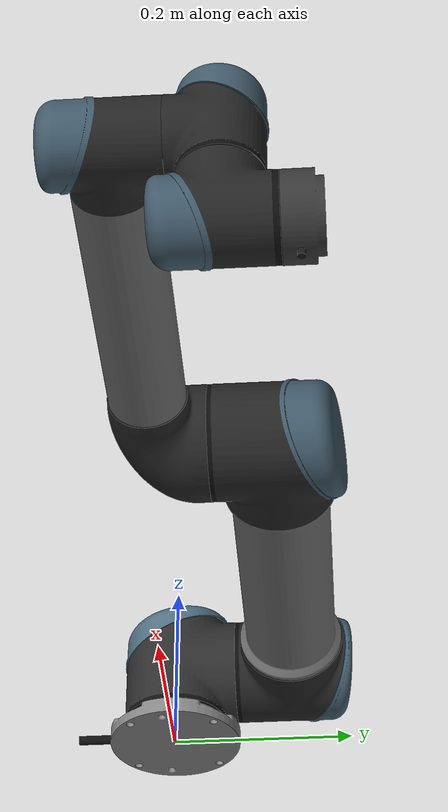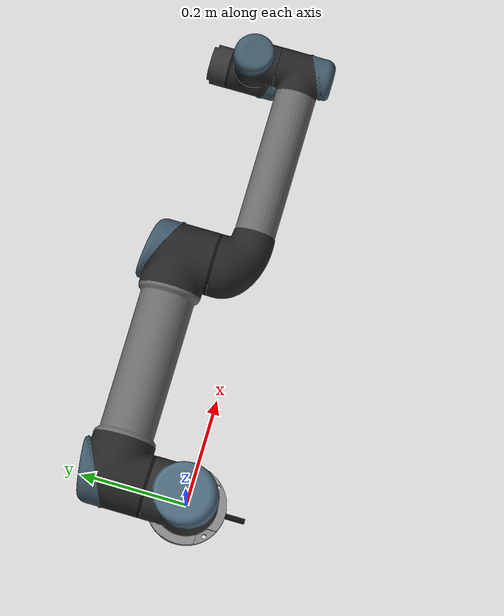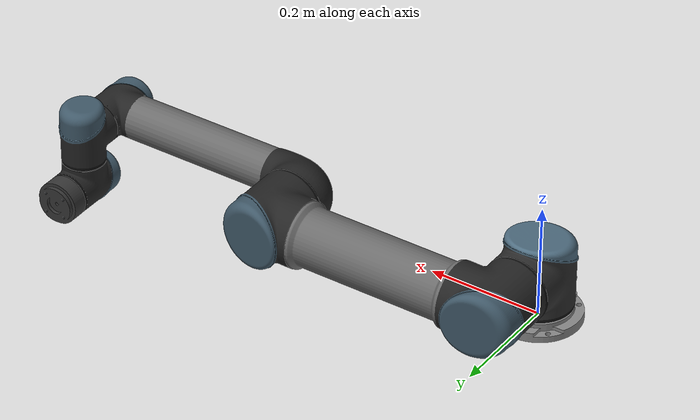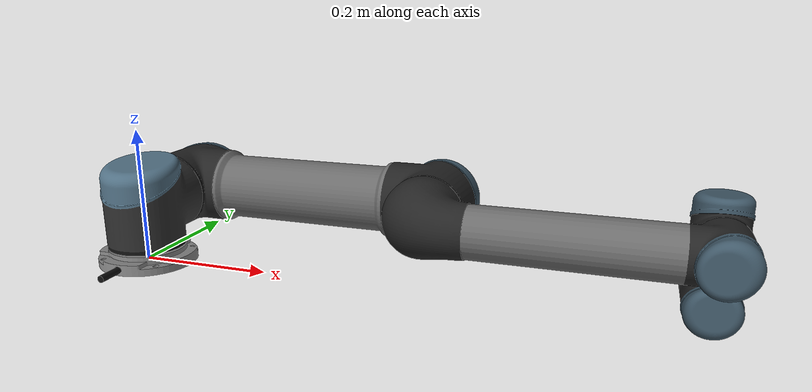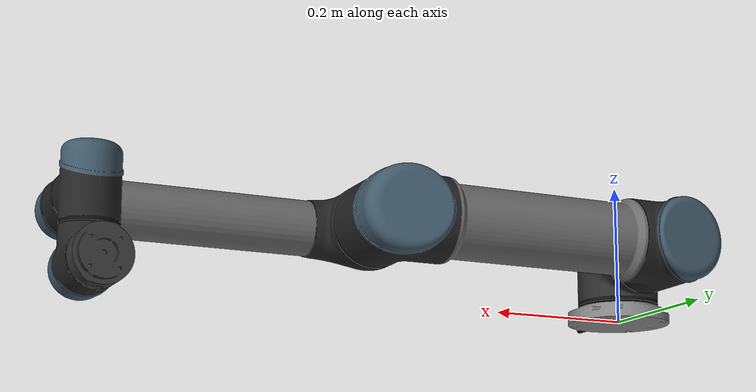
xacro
<?xml version="1.0"?>
<robot xmlns:xacro="http://www.ros.org/wiki/xacro" name="ur">
    <xacro:arg name="initial_positions_file" default="initial_positions.yaml" />

    <!-- Import ur urdf file -->
    <xacro:include filename="$(find ur_description)/urdf/ur5.urdf" />

    <!-- Import control_xacro -->
    <xacro:include filename="ur.ros2_control.xacro" />

    <xacro:ur_ros2_control name="FakeSystem" initial_positions_file="$(arg initial_positions_file)"/>

</robot>

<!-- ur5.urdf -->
<!-- |    This document was autogenerated by xacro from /opt/ros/humble/share/ur_description/urdf/ur.urdf.xacro | -->
<!-- |    EDITING THIS FILE BY HAND IS NOT RECOMMENDED                                 | -->
<robot name="ur">
  <!-- create link fixed to the "world" -->
  <link name="world"/>
  <ros2_control name="ur" type="system">
    <hardware>
      <plugin>ur_robot_driver/URPositionHardwareInterface</plugin>
      <param name="robot_ip">0.0.0.0</param>
      <param name="script_filename"></param>
      <param name="output_recipe_filename"></param>
      <param name="input_recipe_filename"></param>
      <param name="headless_mode">False</param>
      <param name="reverse_port">50001</param>
      <param name="script_sender_port">50002</param>
      <param name="reverse_ip">0.0.0.0</param>
      <param name="script_command_port">50004</param>
      <param name="trajectory_port">50003</param>
      <param name="tf_prefix"></param>
      <param name="non_blocking_read">False</param>
      <param name="servoj_gain">2000</param>
      <param name="servoj_lookahead_time">0.03</param>
      <param name="use_tool_communication">False</param>
      <param name="kinematics/hash">calib_209549117540498681</param>
      <param name="tool_voltage">0</param>
      <param name="tool_parity">0</param>
      <param name="tool_baud_rate">115200</param>
      <param name="tool_stop_bits">1</param>
      <param name="tool_rx_idle_chars">1.5</param>
      <param name="tool_tx_idle_chars">3.5</param>
      <param name="tool_device_name">/tmp/ttyUR</param>
      <param name="tool_tcp_port">54321</param>
      <param name="keep_alive_count">2</param>
    </hardware>
    <joint name="shoulder_pan_joint">
      <command_interface name="position">
        <param name="min">{-2*pi}</param>
        <param name="max">{2*pi}</param>
      </command_interface>
      <command_interface name="velocity">
        <param name="min">-3.15</param>
        <param name="max">3.15</param>
      </command_interface>
      <state_interface name="position">
        <!-- initial position for the FakeSystem and simulation -->
        <param name="initial_value">0.0</param>
      </state_interface>
      <state_interface name="velocity"/>
      <state_interface name="effort"/>
    </joint>
    <joint name="shoulder_lift_joint">
      <command_interface name="position">
        <param name="min">{-2*pi}</param>
        <param name="max">{2*pi}</param>
      </command_interface>
      <command_interface name="velocity">
        <param name="min">-3.15</param>
        <param name="max">3.15</param>
      </command_interface>
      <state_interface name="position">
        <!-- initial position for the FakeSystem and simulation -->
        <param name="initial_value">-1.57</param>
      </state_interface>
      <state_interface name="velocity"/>
      <state_interface name="effort"/>
    </joint>
    <joint name="elbow_joint">
      <command_interface name="position">
        <param name="min">{-pi}</param>
        <param name="max">{pi}</param>
      </command_interface>
      <command_interface name="velocity">
        <param name="min">-3.15</param>
        <param name="max">3.15</param>
      </command_interface>
      <state_interface name="position">
        <!-- initial position for the FakeSystem and simulation -->
        <param name="initial_value">0.0</param>
      </state_interface>
      <state_interface name="velocity"/>
      <state_interface name="effort"/>
    </joint>
    <joint name="wrist_1_joint">
      <command_interface name="position">
        <param name="min">{-2*pi}</param>
        <param name="max">{2*pi}</param>
      </command_interface>
      <command_interface name="velocity">
        <param name="min">-3.2</param>
        <param name="max">3.2</param>
      </command_interface>
      <state_interface name="position">
        <!-- initial position for the FakeSystem and simulation -->
        <param name="initial_value">-1.57</param>
      </state_interface>
      <state_interface name="velocity"/>
      <state_interface name="effort"/>
    </joint>
    <joint name="wrist_2_joint">
      <command_interface name="position">
        <param name="min">{-2*pi}</param>
        <param name="max">{2*pi}</param>
      </command_interface>
      <command_interface name="velocity">
        <param name="min">-3.2</param>
        <param name="max">3.2</param>
      </command_interface>
      <state_interface name="position">
        <!-- initial position for the FakeSystem and simulation -->
        <param name="initial_value">0.0</param>
      </state_interface>
      <state_interface name="velocity"/>
      <state_interface name="effort"/>
    </joint>
    <joint name="wrist_3_joint">
      <command_interface name="position">
        <param name="min">{-2*pi}</param>
        <param name="max">{2*pi}</param>
      </command_interface>
      <command_interface name="velocity">
        <param name="min">-3.2</param>
        <param name="max">3.2</param>
      </command_interface>
      <state_interface name="position">
        <!-- initial position for the FakeSystem and simulation -->
        <param name="initial_value">0.0</param>
      </state_interface>
      <state_interface name="velocity"/>
      <state_interface name="effort"/>
    </joint>
    <sensor name="tcp_fts_sensor">
      <state_interface name="force.x"/>
      <state_interface name="force.y"/>
      <state_interface name="force.z"/>
      <state_interface name="torque.x"/>
      <state_interface name="torque.y"/>
      <state_interface name="torque.z"/>
    </sensor>
    <!-- NOTE The following are joints used only for testing with fake hardware and will change in the future -->
    <gpio name="speed_scaling">
      <state_interface name="speed_scaling_factor"/>
      <param name="initial_speed_scaling_factor">1</param>
      <command_interface name="target_speed_fraction_cmd"/>
      <command_interface name="target_speed_fraction_async_success"/>
    </gpio>
    <gpio name="gpio">
      <command_interface name="standard_digital_output_cmd_0"/>
      <command_interface name="standard_digital_output_cmd_1"/>
      <command_interface name="standard_digital_output_cmd_2"/>
      <command_interface name="standard_digital_output_cmd_3"/>
      <command_interface name="standard_digital_output_cmd_4"/>
      <command_interface name="standard_digital_output_cmd_5"/>
      <command_interface name="standard_digital_output_cmd_6"/>
      <command_interface name="standard_digital_output_cmd_7"/>
      <command_interface name="standard_digital_output_cmd_8"/>
      <command_interface name="standard_digital_output_cmd_9"/>
      <command_interface name="standard_digital_output_cmd_10"/>
      <command_interface name="standard_digital_output_cmd_11"/>
      <command_interface name="standard_digital_output_cmd_12"/>
      <command_interface name="standard_digital_output_cmd_13"/>
      <command_interface name="standard_digital_output_cmd_14"/>
      <command_interface name="standard_digital_output_cmd_15"/>
      <command_interface name="standard_digital_output_cmd_16"/>
      <command_interface name="standard_digital_output_cmd_17"/>
      <command_interface name="standard_analog_output_cmd_0"/>
      <command_interface name="standard_analog_output_cmd_1"/>
      <command_interface name="tool_voltage_cmd"/>
      <command_interface name="io_async_success"/>
      <state_interface name="digital_output_0"/>
      <state_interface name="digital_output_1"/>
      <state_interface name="digital_output_2"/>
      <state_interface name="digital_output_3"/>
      <state_interface name="digital_output_4"/>
      <state_interface name="digital_output_5"/>
      <state_interface name="digital_output_6"/>
      <state_interface name="digital_output_7"/>
      <state_interface name="digital_output_8"/>
      <state_interface name="digital_output_9"/>
      <state_interface name="digital_output_10"/>
      <state_interface name="digital_output_11"/>
      <state_interface name="digital_output_12"/>
      <state_interface name="digital_output_13"/>
      <state_interface name="digital_output_14"/>
      <state_interface name="digital_output_15"/>
      <state_interface name="digital_output_16"/>
      <state_interface name="digital_output_17"/>
      <state_interface name="digital_input_0"/>
      <state_interface name="digital_input_1"/>
      <state_interface name="digital_input_2"/>
      <state_interface name="digital_input_3"/>
      <state_interface name="digital_input_4"/>
      <state_interface name="digital_input_5"/>
      <state_interface name="digital_input_6"/>
      <state_interface name="digital_input_7"/>
      <state_interface name="digital_input_8"/>
      <state_interface name="digital_input_9"/>
      <state_interface name="digital_input_10"/>
      <state_interface name="digital_input_11"/>
      <state_interface name="digital_input_12"/>
      <state_interface name="digital_input_13"/>
      <state_interface name="digital_input_14"/>
      <state_interface name="digital_input_15"/>
      <state_interface name="digital_input_16"/>
      <state_interface name="digital_input_17"/>
      <state_interface name="standard_analog_output_0"/>
      <state_interface name="standard_analog_output_1"/>
      <state_interface name="standard_analog_input_0"/>
      <state_interface name="standard_analog_input_1"/>
      <state_interface name="analog_io_type_0"/>
      <state_interface name="analog_io_type_1"/>
      <state_interface name="analog_io_type_2"/>
      <state_interface name="analog_io_type_3"/>
      <state_interface name="tool_mode"/>
      <state_interface name="tool_output_voltage"/>
      <state_interface name="tool_output_current"/>
      <state_interface name="tool_temperature"/>
      <state_interface name="tool_analog_input_0"/>
      <state_interface name="tool_analog_input_1"/>
      <state_interface name="tool_analog_input_type_0"/>
      <state_interface name="tool_analog_input_type_1"/>
      <state_interface name="robot_mode"/>
      <state_interface name="robot_status_bit_0"/>
      <state_interface name="robot_status_bit_1"/>
      <state_interface name="robot_status_bit_2"/>
      <state_interface name="robot_status_bit_3"/>
      <state_interface name="safety_mode"/>
      <state_interface name="safety_status_bit_0"/>
      <state_interface name="safety_status_bit_1"/>
      <state_interface name="safety_status_bit_2"/>
      <state_interface name="safety_status_bit_3"/>
      <state_interface name="safety_status_bit_4"/>
      <state_interface name="safety_status_bit_5"/>
      <state_interface name="safety_status_bit_6"/>
      <state_interface name="safety_status_bit_7"/>
      <state_interface name="safety_status_bit_8"/>
      <state_interface name="safety_status_bit_9"/>
      <state_interface name="safety_status_bit_10"/>
      <state_interface name="program_running"/>
    </gpio>
    <gpio name="payload">
      <command_interface name="mass"/>
      <command_interface name="cog.x"/>
      <command_interface name="cog.y"/>
      <command_interface name="cog.z"/>
      <command_interface name="payload_async_success"/>
    </gpio>
    <gpio name="resend_robot_program">
      <command_interface name="resend_robot_program_cmd"/>
      <command_interface name="resend_robot_program_async_success"/>
    </gpio>
    <gpio name="hand_back_control">
      <command_interface name="hand_back_control_cmd"/>
      <command_interface name="hand_back_control_async_success"/>
    </gpio>
    <gpio name="zero_ftsensor">
      <command_interface name="zero_ftsensor_cmd"/>
      <command_interface name="zero_ftsensor_async_success"/>
    </gpio>
    <gpio name="system_interface">
      <state_interface name="initialized"/>
    </gpio>
  </ros2_control>
  <!-- Add URDF transmission elements (for ros_control) -->
  <!-- Placeholder for ros2_control transmission which don't yet exist -->
  <!-- links -  main serial chain -->
  <link name="base_link"/>
  <link name="base_link_inertia">
    <visual>
      <origin rpy="0 0 3.141592653589793" xyz="0 0 0"/>
      <geometry>
        <mesh filename="package://ur_description/meshes/ur5/visual/base.dae"/>
      </geometry>
    </visual>
    <collision>
      <origin rpy="0 0 3.141592653589793" xyz="0 0 0"/>
      <geometry>
        <mesh filename="package://ur_description/meshes/ur5/collision/base.stl"/>
      </geometry>
    </collision>
    <inertial>
      <mass value="4.0"/>
      <origin rpy="0 0 0" xyz="0 0 0"/>
      <inertia ixx="0.00443333156" ixy="0.0" ixz="0.0" iyy="0.00443333156" iyz="0.0" izz="0.0072"/>
    </inertial>
  </link>
  <link name="shoulder_link">
    <visual>
      <origin rpy="0 0 3.141592653589793" xyz="0 0 0"/>
      <geometry>
        <mesh filename="package://ur_description/meshes/ur5/visual/shoulder.dae"/>
      </geometry>
    </visual>
    <collision>
      <origin rpy="0 0 3.141592653589793" xyz="0 0 0"/>
      <geometry>
        <mesh filename="package://ur_description/meshes/ur5/collision/shoulder.stl"/>
      </geometry>
    </collision>
    <inertial>
      <mass value="3.7"/>
      <origin rpy="0 0 0" xyz="0 0 0"/>
      <inertia ixx="0.014972352344389999" ixy="0.0" ixz="0.0" iyy="0.014972352344389999" iyz="0.0" izz="0.01040625"/>
    </inertial>
  </link>
  <link name="upper_arm_link">
    <visual>
      <origin rpy="1.5707963267948966 0 -1.5707963267948966" xyz="0 0 0.13585"/>
      <geometry>
        <mesh filename="package://ur_description/meshes/ur5/visual/upperarm.dae"/>
      </geometry>
    </visual>
    <collision>
      <origin rpy="1.5707963267948966 0 -1.5707963267948966" xyz="0 0 0.13585"/>
      <geometry>
        <mesh filename="package://ur_description/meshes/ur5/collision/upperarm.stl"/>
      </geometry>
    </collision>
    <inertial>
      <mass value="8.393"/>
      <origin rpy="0 1.5707963267948966 0" xyz="-0.2125 0.0 0.136"/>
      <inertia ixx="0.1338857818623325" ixy="0.0" ixz="0.0" iyy="0.1338857818623325" iyz="0.0" izz="0.0151074"/>
    </inertial>
  </link>
  <link name="forearm_link">
    <visual>
      <origin rpy="1.5707963267948966 0 -1.5707963267948966" xyz="0 0 0.0165"/>
      <geometry>
        <mesh filename="package://ur_description/meshes/ur5/visual/forearm.dae"/>
      </geometry>
    </visual>
    <collision>
      <origin rpy="1.5707963267948966 0 -1.5707963267948966" xyz="0 0 0.0165"/>
      <geometry>
        <mesh filename="package://ur_description/meshes/ur5/collision/forearm.stl"/>
      </geometry>
    </collision>
    <inertial>
      <mass value="2.275"/>
      <origin rpy="0 1.5707963267948966 0" xyz="-0.196125 0.0 0.0165"/>
      <inertia ixx="0.03121679102890359" ixy="0.0" ixz="0.0" iyy="0.03121679102890359" iyz="0.0" izz="0.004095"/>
    </inertial>
  </link>
  <link name="wrist_1_link">
    <visual>
      <origin rpy="1.5707963267948966 0 0" xyz="0 0 -0.093"/>
      <geometry>
        <mesh filename="package://ur_description/meshes/ur5/visual/wrist1.dae"/>
      </geometry>
    </visual>
    <collision>
      <origin rpy="1.5707963267948966 0 0" xyz="0 0 -0.093"/>
      <geometry>
        <mesh filename="package://ur_description/meshes/ur5/collision/wrist1.stl"/>
      </geometry>
    </collision>
    <inertial>
      <mass value="1.219"/>
      <origin rpy="0 0 0" xyz="0 0 0"/>
      <inertia ixx="0.0020138887777775" ixy="0.0" ixz="0.0" iyy="0.0020138887777775" iyz="0.0" izz="0.0021942"/>
    </inertial>
  </link>
  <link name="wrist_2_link">
    <visual>
      <origin rpy="0 0 0" xyz="0 0 -0.095"/>
      <geometry>
        <mesh filename="package://ur_description/meshes/ur5/visual/wrist2.dae"/>
      </geometry>
    </visual>
    <collision>
      <origin rpy="0 0 0" xyz="0 0 -0.095"/>
      <geometry>
        <mesh filename="package://ur_description/meshes/ur5/collision/wrist2.stl"/>
      </geometry>
    </collision>
    <inertial>
      <mass value="1.219"/>
      <origin rpy="0 0 0" xyz="0 0 0"/>
      <inertia ixx="0.0018310388509175" ixy="0.0" ixz="0.0" iyy="0.0018310388509175" iyz="0.0" izz="0.0021942"/>
    </inertial>
  </link>
  <link name="wrist_3_link">
    <visual>
      <origin rpy="1.5707963267948966 0 0" xyz="0 0 -0.0818"/>
      <geometry>
        <mesh filename="package://ur_description/meshes/ur5/visual/wrist3.dae"/>
      </geometry>
    </visual>
    <collision>
      <origin rpy="1.5707963267948966 0 0" xyz="0 0 -0.0818"/>
      <geometry>
        <mesh filename="package://ur_description/meshes/ur5/collision/wrist3.stl"/>
      </geometry>
    </collision>
    <inertial>
      <mass value="0.1879"/>
      <origin rpy="0 0 0" xyz="0.0 0.0 -0.01525"/>
      <inertia ixx="8.062472608343e-05" ixy="0.0" ixz="0.0" iyy="8.062472608343e-05" iyz="0.0" izz="0.0001321171875"/>
    </inertial>
  </link>
  <!-- base_joint fixes base_link to the environment -->
  <joint name="base_joint" type="fixed">
    <origin rpy="0 0 0" xyz="0 0 0"/>
    <parent link="world"/>
    <child link="base_link"/>
  </joint>
  <!-- joints - main serial chain -->
  <joint name="base_link-base_link_inertia" type="fixed">
    <parent link="base_link"/>
    <child link="base_link_inertia"/>
    <origin rpy="0 0 3.141592653589793" xyz="0 0 0"/>
  </joint>
  <joint name="shoulder_pan_joint" type="revolute">
    <parent link="base_link_inertia"/>
    <child link="shoulder_link"/>
    <origin rpy="0 0 0" xyz="0 0 0.089159"/>
    <axis xyz="0 0 1"/>
    <limit effort="150.0" lower="-6.283185307179586" upper="6.283185307179586" velocity="3.141592653589793"/>
    <dynamics damping="0" friction="0"/>
  </joint>
  <joint name="shoulder_lift_joint" type="revolute">
    <parent link="shoulder_link"/>
    <child link="upper_arm_link"/>
    <origin rpy="1.570796327 0 0" xyz="0 0 0"/>
    <axis xyz="0 0 1"/>
    <limit effort="150.0" lower="-6.283185307179586" upper="6.283185307179586" velocity="3.141592653589793"/>
    <dynamics damping="0" friction="0"/>
  </joint>
  <joint name="elbow_joint" type="revolute">
    <parent link="upper_arm_link"/>
    <child link="forearm_link"/>
    <origin rpy="0 0 0" xyz="-0.425 0 0"/>
    <axis xyz="0 0 1"/>
    <limit effort="150.0" lower="-3.141592653589793" upper="3.141592653589793" velocity="3.141592653589793"/>
    <dynamics damping="0" friction="0"/>
  </joint>
  <joint name="wrist_1_joint" type="revolute">
    <parent link="forearm_link"/>
    <child link="wrist_1_link"/>
    <origin rpy="0 0 0" xyz="-0.39225 0 0.10915"/>
    <axis xyz="0 0 1"/>
    <limit effort="28.0" lower="-6.283185307179586" upper="6.283185307179586" velocity="3.141592653589793"/>
    <dynamics damping="0" friction="0"/>
  </joint>
  <joint name="wrist_2_joint" type="revolute">
    <parent link="wrist_1_link"/>
    <child link="wrist_2_link"/>
    <origin rpy="1.570796327 0 0" xyz="0 -0.09465 -1.941303950897609e-11"/>
    <axis xyz="0 0 1"/>
    <limit effort="28.0" lower="-6.283185307179586" upper="6.283185307179586" velocity="3.141592653589793"/>
    <dynamics damping="0" friction="0"/>
  </joint>
  <joint name="wrist_3_joint" type="revolute">
    <parent link="wrist_2_link"/>
    <child link="wrist_3_link"/>
    <origin rpy="1.570796326589793 3.141592653589793 3.141592653589793" xyz="0 0.0823 -1.688001216681175e-11"/>
    <axis xyz="0 0 1"/>
    <limit effort="28.0" lower="-6.283185307179586" upper="6.283185307179586" velocity="3.141592653589793"/>
    <dynamics damping="0" friction="0"/>
  </joint>
  <link name="ft_frame"/>
  <joint name="wrist_3_link-ft_frame" type="fixed">
    <parent link="wrist_3_link"/>
    <child link="ft_frame"/>
    <origin rpy="3.141592653589793 0 0" xyz="0 0 0"/>
  </joint>
  <!-- ROS-Industrial 'base' frame - base_link to UR 'Base' Coordinates transform -->
  <link name="base"/>
  <joint name="base_link-base_fixed_joint" type="fixed">
    <origin rpy="0 0 3.141592653589793" xyz="0 0 0"/>
    <parent link="base_link"/>
    <child link="base"/>
  </joint>
  <!-- ROS-Industrial 'flange' frame - attachment point for EEF models -->
  <link name="flange"/>
  <joint name="wrist_3-flange" type="fixed">
    <parent link="wrist_3_link"/>
    <child link="flange"/>
    <origin rpy="0 -1.5707963267948966 -1.5707963267948966" xyz="0 0 0"/>
  </joint>
  <!-- ROS-Industrial 'tool0' frame - all-zeros tool frame -->
  <link name="tool0"/>
  <joint name="flange-tool0" type="fixed">
    <!-- default toolframe - X+ left, Y+ up, Z+ front -->
    <origin rpy="1.5707963267948966 0 1.5707963267948966" xyz="0 0 0"/>
    <parent link="flange"/>
    <child link="tool0"/>
  </joint>
</robot>
